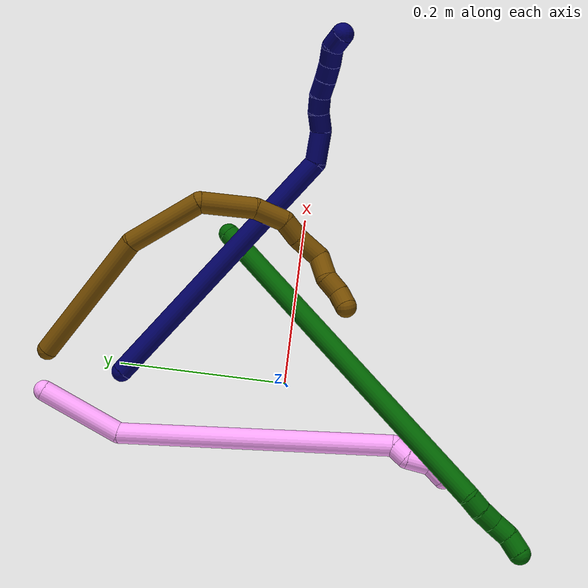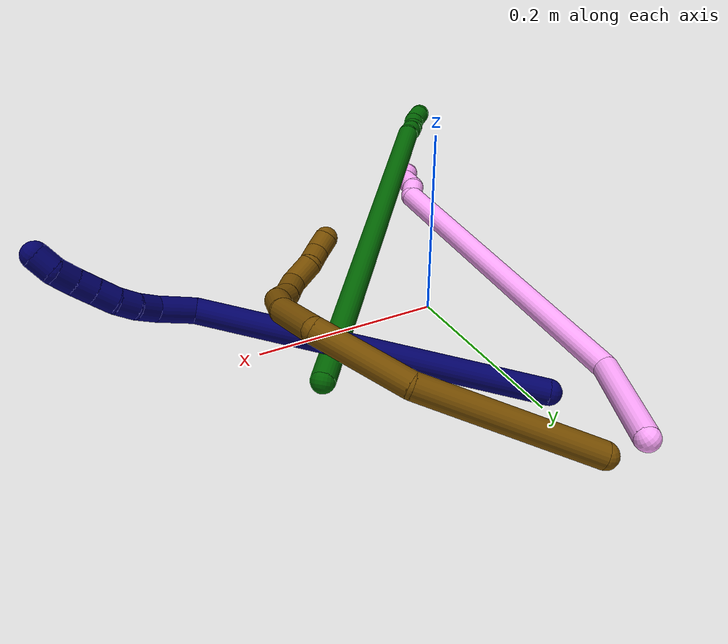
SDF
<sdf version="1.7">
 <world name="default">
  <model name="photoneo_s_sensor">
   <static>1</static>
   <pose>0 0 2 1.57079 1.57079 3.14159</pose>
   <link name="link">
    <inertial><mass>0.1</mass></inertial>
    <sensor name="sensor" type="depth">
     <update_rate>30</update_rate>
     <camera>
      <horizontal_fov>1.22</horizontal_fov>
      <image><width>1920</width><height>1200</height><format>B8G8R8</format></image>
      <clip><near>0.1</near><far>4</far></clip>
      <depth_camera><output>points</output></depth_camera>
     </camera>
     <plugin name="camera_plugin" filename="libgazebo_ros_depth_camera.so">
      <baseline>0.2</baseline>
      <alwaysOn>1</alwaysOn>
      <updateRate>0.0</updateRate>
      <cameraName>camera_ir</cameraName>
      <imageTopicName>/camera/color/image_raw</imageTopicName>
      <cameraInfoTopicName>/camera/color/camera_info</cameraInfoTopicName>
      <depthImageTopicName>/camera/depth/image_raw</depthImageTopicName>
      <depthImageCameraInfoTopicName>/camera/depth/camera_info</depthImageCameraInfoTopicName>
      <pointCloudTopicName>/camera/depth/points</pointCloudTopicName>
      <frameName>fr_optical</frameName>
      <pointCloudCutoff>0.1</pointCloudCutoff>
      <pointCloudCutoffMax>2.0</pointCloudCutoffMax>
      <distortionK1>0</distortionK1>
      <distortionK2>0</distortionK2>
      <distortionK3>0</distortionK3>
      <distortionT1>0</distortionT1>
      <distortionT2>0</distortionT2>
      <CxPrime>0</CxPrime>
      <Cx>0</Cx>
      <Cy>0</Cy>
      <focalLength>0</focalLength>
      <hackBaseline>0</hackBaseline>
     </plugin>
    </sensor>
   </link>
  </model>
  <model name="bin">
   <static>1</static>
   <link name="bottom">
    <collision name="collision-bottom">
     <pose>0 0 -0.01 0 -0 0</pose>
     <geometry><box><size>0.8 0.6 0.02</size></box></geometry>
     <surface>
      <friction><ode><mu>100</mu><mu2>100</mu2></ode></friction>
      <contact><collide_bitmask>65535</collide_bitmask></contact>
     </surface>
    </collision>
   </link>
   <link name="west_wall">
    <collision name="collision-west_wall">
     <pose>-0.41 0 0.1 0 -0 0</pose>
     <geometry><box><size>0.02 0.6 0.2</size></box></geometry>
     <surface>
      <friction><ode><mu>100</mu><mu2>100</mu2></ode></friction>
      <contact><collide_bitmask>65535</collide_bitmask></contact>
     </surface>
    </collision>
   </link>
   <link name="east_wall">
    <collision name="collision-east_wall">
     <pose>0.41 0 0.1 0 -0 0</pose>
     <geometry><box><size>0.02 0.6 0.2</size></box></geometry>
     <surface>
      <friction><ode><mu>100</mu><mu2>100</mu2></ode></friction>
      <contact><collide_bitmask>65535</collide_bitmask></contact>
     </surface>
    </collision>
   </link>
   <link name="south_wall">
    <collision name="collision-south_wall">
     <pose>0 -0.31 0.1 0 -0 0</pose>
     <geometry><box><size>0.8 0.02 0.2</size></box></geometry>
     <surface>
      <friction><ode><mu>100</mu><mu2>100</mu2></ode></friction>
      <contact><collide_bitmask>65535</collide_bitmask></contact>
     </surface>
    </collision>
   </link>
   <link name="north_wall">
    <collision name="collision-north_wall">
     <pose>0 0.31 0.1 0 -0 0</pose>
     <geometry><box><size>0.8 0.02 0.2</size></box></geometry>
     <surface>
      <friction><ode><mu>100</mu><mu2>100</mu2></ode></friction>
      <contact><collide_bitmask>65535</collide_bitmask></contact>
     </surface>
    </collision>
   </link>
  </model>
  <model name="4">
   <static>0</static>
   <link name="4">
    <collision name="collision-cylinder-e_1_1_4">
     <pose>0.033227 -0.037337 -0.012721 1.89916 0.700036 0.943273</pose>
     <geometry><cylinder><radius>0.0125</radius><length>0.103149</length></cylinder></geometry>
     <surface>
      <friction><ode><mu>1.16</mu><mu2>1.16</mu2><slip1>0</slip1><slip2>0</slip2></ode></friction>
      <contact><ode><kp>1e+06</kp><kd>1</kd><max_vel>0</max_vel><min_depth>0.001</min_depth></ode></contact>
     </surface>
    </collision>
    <visual name="visual-cylinder-e_1_1_4">
     <pose>0.033227 -0.037337 -0.012721 1.89916 0.700036 0.943273</pose>
     <geometry><cylinder><radius>0.0125</radius><length>0.103149</length></cylinder></geometry>
     <material><ambient>1 0.65098 0.996078 1</ambient></material>
    </visual>
    <collision name="collision-cylinder-e_2_4_5">
     <pose>0.117401 -0.192231 -0.127233 2.28445 0.316616 0.672302</pose>
     <geometry><cylinder><radius>0.0125</radius><length>0.327271</length></cylinder></geometry>
     <surface>
      <friction><ode><mu>1.16</mu><mu2>1.16</mu2><slip1>0</slip1><slip2>0</slip2></ode></friction>
      <contact><ode><kp>1e+06</kp><kd>1</kd><max_vel>0</max_vel><min_depth>0.001</min_depth></ode></contact>
     </surface>
    </collision>
    <visual name="visual-cylinder-e_2_4_5">
     <pose>0.117401 -0.192231 -0.127233 2.28445 0.316616 0.672302</pose>
     <geometry><cylinder><radius>0.0125</radius><length>0.327271</length></cylinder></geometry>
     <material><ambient>1 0.65098 0.996078 1</ambient></material>
    </visual>
    <collision name="collision-cylinder-e_3_5_6">
     <pose>0.176737 -0.314758 -0.231366 2.01078 0.990752 1.41078</pose>
     <geometry><cylinder><radius>0.0125</radius><length>0.020054</length></cylinder></geometry>
     <surface>
      <friction><ode><mu>1.16</mu><mu2>1.16</mu2><slip1>0</slip1><slip2>0</slip2></ode></friction>
      <contact><ode><kp>1e+06</kp><kd>1</kd><max_vel>0</max_vel><min_depth>0.001</min_depth></ode></contact>
     </surface>
    </collision>
    <visual name="visual-cylinder-e_3_5_6">
     <pose>0.176737 -0.314758 -0.231366 2.01078 0.990752 1.41078</pose>
     <geometry><cylinder><radius>0.0125</radius><length>0.020054</length></cylinder></geometry>
     <material><ambient>1 0.65098 0.996078 1</ambient></material>
    </visual>
    <collision name="collision-cylinder-e_4_6_7">
     <pose>0.191396 -0.331211 -0.238763 1.98572 0.463642 0.69454</pose>
     <geometry><cylinder><radius>0.0125</radius><length>0.028053</length></cylinder></geometry>
     <surface>
      <friction><ode><mu>1.16</mu><mu2>1.16</mu2><slip1>0</slip1><slip2>0</slip2></ode></friction>
      <contact><ode><kp>1e+06</kp><kd>1</kd><max_vel>0</max_vel><min_depth>0.001</min_depth></ode></contact>
     </surface>
    </collision>
    <visual name="visual-cylinder-e_4_6_7">
     <pose>0.191396 -0.331211 -0.238763 1.98572 0.463642 0.69454</pose>
     <geometry><cylinder><radius>0.0125</radius><length>0.028053</length></cylinder></geometry>
     <material><ambient>1 0.65098 0.996078 1</ambient></material>
    </visual>
    <collision name="collision-cylinder-e_5_7_2">
     <pose>0.206412 -0.34891 -0.244256 1.64063 0.951467 1.00951</pose>
     <geometry><cylinder><radius>0.0125</radius><length>0.021474</length></cylinder></geometry>
     <surface>
      <friction><ode><mu>1.16</mu><mu2>1.16</mu2><slip1>0</slip1><slip2>0</slip2></ode></friction>
      <contact><ode><kp>1e+06</kp><kd>1</kd><max_vel>0</max_vel><min_depth>0.001</min_depth></ode></contact>
     </surface>
    </collision>
    <visual name="visual-cylinder-e_5_7_2">
     <pose>0.206412 -0.34891 -0.244256 1.64063 0.951467 1.00951</pose>
     <geometry><cylinder><radius>0.0125</radius><length>0.021474</length></cylinder></geometry>
     <material><ambient>1 0.65098 0.996078 1</ambient></material>
    </visual>
    <collision name="collision-sphere-2">
     <pose>0.215154 -0.355127 -0.24469 0 -0 0</pose>
     <geometry><sphere><radius>0.0125</radius></sphere></geometry>
     <surface>
      <friction><ode><mu>1.16</mu><mu2>1.16</mu2><slip1>0</slip1><slip2>0</slip2></ode></friction>
      <contact><ode><kp>1e+06</kp><kd>1</kd><max_vel>0</max_vel><min_depth>0.001</min_depth></ode></contact>
     </surface>
    </collision>
    <visual name="visual-sphere-2">
     <pose>0.215154 -0.355127 -0.24469 0 -0 0</pose>
     <geometry><sphere><radius>0.0125</radius></sphere></geometry>
     <material><ambient>1 0.65098 0.996078 1</ambient></material>
    </visual>
    <collision name="collision-sphere-7">
     <pose>0.197669 -0.342693 -0.243821 0 -0 0</pose>
     <geometry><sphere><radius>0.0125</radius></sphere></geometry>
     <surface>
      <friction><ode><mu>1.16</mu><mu2>1.16</mu2><slip1>0</slip1><slip2>0</slip2></ode></friction>
      <contact><ode><kp>1e+06</kp><kd>1</kd><max_vel>0</max_vel><min_depth>0.001</min_depth></ode></contact>
     </surface>
    </collision>
    <visual name="visual-sphere-7">
     <pose>0.197669 -0.342693 -0.243821 0 -0 0</pose>
     <geometry><sphere><radius>0.0125</radius></sphere></geometry>
     <material><ambient>1 0.65098 0.996078 1</ambient></material>
    </visual>
    <collision name="collision-sphere-6">
     <pose>0.185124 -0.31973 -0.233706 0 -0 0</pose>
     <geometry><sphere><radius>0.0125</radius></sphere></geometry>
     <surface>
      <friction><ode><mu>1.16</mu><mu2>1.16</mu2><slip1>0</slip1><slip2>0</slip2></ode></friction>
      <contact><ode><kp>1e+06</kp><kd>1</kd><max_vel>0</max_vel><min_depth>0.001</min_depth></ode></contact>
     </surface>
    </collision>
    <visual name="visual-sphere-6">
     <pose>0.185124 -0.31973 -0.233706 0 -0 0</pose>
     <geometry><sphere><radius>0.0125</radius></sphere></geometry>
     <material><ambient>1 0.65098 0.996078 1</ambient></material>
    </visual>
    <collision name="collision-sphere-5">
     <pose>0.16835 -0.309786 -0.229025 0 -0 0</pose>
     <geometry><sphere><radius>0.0125</radius></sphere></geometry>
     <surface>
      <friction><ode><mu>1.16</mu><mu2>1.16</mu2><slip1>0</slip1><slip2>0</slip2></ode></friction>
      <contact><ode><kp>1e+06</kp><kd>1</kd><max_vel>0</max_vel><min_depth>0.001</min_depth></ode></contact>
     </surface>
    </collision>
    <visual name="visual-sphere-5">
     <pose>0.16835 -0.309786 -0.229025 0 -0 0</pose>
     <geometry><sphere><radius>0.0125</radius></sphere></geometry>
     <material><ambient>1 0.65098 0.996078 1</ambient></material>
    </visual>
    <collision name="collision-sphere-1">
     <geometry><sphere><radius>0.0125</radius></sphere></geometry>
     <surface>
      <friction><ode><mu>1.16</mu><mu2>1.16</mu2><slip1>0</slip1><slip2>0</slip2></ode></friction>
      <contact><ode><kp>1e+06</kp><kd>1</kd><max_vel>0</max_vel><min_depth>0.001</min_depth></ode></contact>
     </surface>
    </collision>
    <visual name="visual-sphere-1">
     <geometry><sphere><radius>0.0125</radius></sphere></geometry>
     <material><ambient>1 0.65098 0.996078 1</ambient></material>
    </visual>
    <collision name="collision-sphere-4">
     <pose>0.066453 -0.074675 -0.025442 0 -0 0</pose>
     <geometry><sphere><radius>0.0125</radius></sphere></geometry>
     <surface>
      <friction><ode><mu>1.16</mu><mu2>1.16</mu2><slip1>0</slip1><slip2>0</slip2></ode></friction>
      <contact><ode><kp>1e+06</kp><kd>1</kd><max_vel>0</max_vel><min_depth>0.001</min_depth></ode></contact>
     </surface>
    </collision>
    <visual name="visual-sphere-4">
     <pose>0.066453 -0.074675 -0.025442 0 -0 0</pose>
     <geometry><sphere><radius>0.0125</radius></sphere></geometry>
     <material><ambient>1 0.65098 0.996078 1</ambient></material>
    </visual>
    <inertial>
     <pose>0.11039 -0.179717 -0.119069 0 -0 0</pose>
     <mass>0.5</mass>
     <inertia>
      <ixx>0.004042</ixx>
      <ixy>0</ixy>
      <ixz>0</ixz>
      <iyy>0.000729</iyy>
      <iyz>0</iyz>
      <izz>0.001183</izz>
     </inertia>
    </inertial>
   </link>
   <pose>-0.04351 0.285562 0.012338 2.51168 -0.341328 -2.77641</pose>
  </model>
  <model name="6">
   <static>0</static>
   <link name="6">
    <collision name="collision-cylinder-e_1_1_4">
     <pose>-0.063832 -0.113019 0.162581 0.607469 -0.311859 -0.098467</pose>
     <geometry><cylinder><radius>0.0125</radius><length>0.41608</length></cylinder></geometry>
     <surface>
      <friction><ode><mu>1.16</mu><mu2>1.16</mu2><slip1>0</slip1><slip2>0</slip2></ode></friction>
      <contact><ode><kp>1e+06</kp><kd>1</kd><max_vel>0</max_vel><min_depth>0.001</min_depth></ode></contact>
     </surface>
    </collision>
    <visual name="visual-cylinder-e_1_1_4">
     <pose>-0.063832 -0.113019 0.162581 0.607469 -0.311859 -0.098467</pose>
     <geometry><cylinder><radius>0.0125</radius><length>0.41608</length></cylinder></geometry>
     <material><ambient>0 0.392157 0.003922 1</ambient></material>
    </visual>
    <collision name="collision-cylinder-e_2_4_5">
     <pose>-0.132184 -0.233147 0.330617 0.916226 -0.467133 -0.233558</pose>
     <geometry><cylinder><radius>0.0125</radius><length>0.020069</length></cylinder></geometry>
     <surface>
      <friction><ode><mu>1.16</mu><mu2>1.16</mu2><slip1>0</slip1><slip2>0</slip2></ode></friction>
      <contact><ode><kp>1e+06</kp><kd>1</kd><max_vel>0</max_vel><min_depth>0.001</min_depth></ode></contact>
     </surface>
    </collision>
    <visual name="visual-cylinder-e_2_4_5">
     <pose>-0.132184 -0.233147 0.330617 0.916226 -0.467133 -0.233558</pose>
     <geometry><cylinder><radius>0.0125</radius><length>0.020069</length></cylinder></geometry>
     <material><ambient>0 0.392157 0.003922 1</ambient></material>
    </visual>
    <collision name="collision-cylinder-e_3_5_6">
     <pose>-0.140657 -0.248673 0.340849 1.05467 -0.387835 -0.227737</pose>
     <geometry><cylinder><radius>0.0125</radius><length>0.020913</length></cylinder></geometry>
     <surface>
      <friction><ode><mu>1.16</mu><mu2>1.16</mu2><slip1>0</slip1><slip2>0</slip2></ode></friction>
      <contact><ode><kp>1e+06</kp><kd>1</kd><max_vel>0</max_vel><min_depth>0.001</min_depth></ode></contact>
     </surface>
    </collision>
    <visual name="visual-cylinder-e_3_5_6">
     <pose>-0.140657 -0.248673 0.340849 1.05467 -0.387835 -0.227737</pose>
     <geometry><cylinder><radius>0.0125</radius><length>0.020913</length></cylinder></geometry>
     <material><ambient>0 0.392157 0.003922 1</ambient></material>
    </visual>
    <collision name="collision-cylinder-e_4_6_7">
     <pose>-0.147602 -0.26473 0.35239 0.845941 -0.285113 -0.129038</pose>
     <geometry><cylinder><radius>0.0125</radius><length>0.021263</length></cylinder></geometry>
     <surface>
      <friction><ode><mu>1.16</mu><mu2>1.16</mu2><slip1>0</slip1><slip2>0</slip2></ode></friction>
      <contact><ode><kp>1e+06</kp><kd>1</kd><max_vel>0</max_vel><min_depth>0.001</min_depth></ode></contact>
     </surface>
    </collision>
    <visual name="visual-cylinder-e_4_6_7">
     <pose>-0.147602 -0.26473 0.35239 0.845941 -0.285113 -0.129038</pose>
     <geometry><cylinder><radius>0.0125</radius><length>0.021263</length></cylinder></geometry>
     <material><ambient>0 0.392157 0.003922 1</ambient></material>
    </visual>
    <collision name="collision-cylinder-e_5_7_2">
     <pose>-0.155716 -0.277606 0.367139 0.580629 -0.492443 -0.149886</pose>
     <geometry><cylinder><radius>0.0125</radius><length>0.021675</length></cylinder></geometry>
     <surface>
      <friction><ode><mu>1.16</mu><mu2>1.16</mu2><slip1>0</slip1><slip2>0</slip2></ode></friction>
      <contact><ode><kp>1e+06</kp><kd>1</kd><max_vel>0</max_vel><min_depth>0.001</min_depth></ode></contact>
     </surface>
    </collision>
    <visual name="visual-cylinder-e_5_7_2">
     <pose>-0.155716 -0.277606 0.367139 0.580629 -0.492443 -0.149886</pose>
     <geometry><cylinder><radius>0.0125</radius><length>0.021675</length></cylinder></geometry>
     <material><ambient>0 0.392157 0.003922 1</ambient></material>
    </visual>
    <collision name="collision-sphere-2">
     <pose>-0.16084 -0.282844 0.375124 0 -0 0</pose>
     <geometry><sphere><radius>0.0125</radius></sphere></geometry>
     <surface>
      <friction><ode><mu>1.16</mu><mu2>1.16</mu2><slip1>0</slip1><slip2>0</slip2></ode></friction>
      <contact><ode><kp>1e+06</kp><kd>1</kd><max_vel>0</max_vel><min_depth>0.001</min_depth></ode></contact>
     </surface>
    </collision>
    <visual name="visual-sphere-2">
     <pose>-0.16084 -0.282844 0.375124 0 -0 0</pose>
     <geometry><sphere><radius>0.0125</radius></sphere></geometry>
     <material><ambient>0 0.392157 0.003922 1</ambient></material>
    </visual>
    <collision name="collision-sphere-7">
     <pose>-0.150592 -0.272367 0.359155 0 -0 0</pose>
     <geometry><sphere><radius>0.0125</radius></sphere></geometry>
     <surface>
      <friction><ode><mu>1.16</mu><mu2>1.16</mu2><slip1>0</slip1><slip2>0</slip2></ode></friction>
      <contact><ode><kp>1e+06</kp><kd>1</kd><max_vel>0</max_vel><min_depth>0.001</min_depth></ode></contact>
     </surface>
    </collision>
    <visual name="visual-sphere-7">
     <pose>-0.150592 -0.272367 0.359155 0 -0 0</pose>
     <geometry><sphere><radius>0.0125</radius></sphere></geometry>
     <material><ambient>0 0.392157 0.003922 1</ambient></material>
    </visual>
    <collision name="collision-sphere-6">
     <pose>-0.144612 -0.257092 0.345626 0 -0 0</pose>
     <geometry><sphere><radius>0.0125</radius></sphere></geometry>
     <surface>
      <friction><ode><mu>1.16</mu><mu2>1.16</mu2><slip1>0</slip1><slip2>0</slip2></ode></friction>
      <contact><ode><kp>1e+06</kp><kd>1</kd><max_vel>0</max_vel><min_depth>0.001</min_depth></ode></contact>
     </surface>
    </collision>
    <visual name="visual-sphere-6">
     <pose>-0.144612 -0.257092 0.345626 0 -0 0</pose>
     <geometry><sphere><radius>0.0125</radius></sphere></geometry>
     <material><ambient>0 0.392157 0.003922 1</ambient></material>
    </visual>
    <collision name="collision-sphere-5">
     <pose>-0.136703 -0.240254 0.336071 0 -0 0</pose>
     <geometry><sphere><radius>0.0125</radius></sphere></geometry>
     <surface>
      <friction><ode><mu>1.16</mu><mu2>1.16</mu2><slip1>0</slip1><slip2>0</slip2></ode></friction>
      <contact><ode><kp>1e+06</kp><kd>1</kd><max_vel>0</max_vel><min_depth>0.001</min_depth></ode></contact>
     </surface>
    </collision>
    <visual name="visual-sphere-5">
     <pose>-0.136703 -0.240254 0.336071 0 -0 0</pose>
     <geometry><sphere><radius>0.0125</radius></sphere></geometry>
     <material><ambient>0 0.392157 0.003922 1</ambient></material>
    </visual>
    <collision name="collision-sphere-1">
     <geometry><sphere><radius>0.0125</radius></sphere></geometry>
     <surface>
      <friction><ode><mu>1.16</mu><mu2>1.16</mu2><slip1>0</slip1><slip2>0</slip2></ode></friction>
      <contact><ode><kp>1e+06</kp><kd>1</kd><max_vel>0</max_vel><min_depth>0.001</min_depth></ode></contact>
     </surface>
    </collision>
    <visual name="visual-sphere-1">
     <geometry><sphere><radius>0.0125</radius></sphere></geometry>
     <material><ambient>0 0.392157 0.003922 1</ambient></material>
    </visual>
    <collision name="collision-sphere-4">
     <pose>-0.127665 -0.226039 0.325162 0 -0 0</pose>
     <geometry><sphere><radius>0.0125</radius></sphere></geometry>
     <surface>
      <friction><ode><mu>1.16</mu><mu2>1.16</mu2><slip1>0</slip1><slip2>0</slip2></ode></friction>
      <contact><ode><kp>1e+06</kp><kd>1</kd><max_vel>0</max_vel><min_depth>0.001</min_depth></ode></contact>
     </surface>
    </collision>
    <visual name="visual-sphere-4">
     <pose>-0.127665 -0.226039 0.325162 0 -0 0</pose>
     <geometry><sphere><radius>0.0125</radius></sphere></geometry>
     <material><ambient>0 0.392157 0.003922 1</ambient></material>
    </visual>
    <inertial>
     <pose>-0.077335 -0.137101 0.193721 0 -0 0</pose>
     <mass>0.5</mass>
     <inertia><ixx>0.00513</ixx><ixy>0</ixy><ixz>0</ixz><iyy>0.00444</iyy><iyz>0</iyz><izz>0.005153</izz></inertia>
    </inertial>
   </link>
   <pose>0.170833 0.089451 0.016864 0.569834 -0.342302 -0.2827</pose>
  </model>
  <model name="7">
   <static>0</static>
   <link name="7">
    <collision name="collision-cylinder-e_1_1_4">
     <pose>0.124875 -0.106838 0.041373 1.20133 0.828411 0.58512</pose>
     <geometry><cylinder><radius>0.0125</radius><length>0.338939</length></cylinder></geometry>
     <surface>
      <friction><ode><mu>1.16</mu><mu2>1.16</mu2><slip1>0</slip1><slip2>0</slip2></ode></friction>
      <contact><ode><kp>1e+06</kp><kd>1</kd><max_vel>0</max_vel><min_depth>0.001</min_depth></ode></contact>
     </surface>
    </collision>
    <visual name="visual-cylinder-e_1_1_4">
     <pose>0.124875 -0.106838 0.041373 1.20133 0.828411 0.58512</pose>
     <geometry><cylinder><radius>0.0125</radius><length>0.338939</length></cylinder></geometry>
     <material><ambient>0.003922 0 0.403922 1</ambient></material>
    </visual>
    <collision name="collision-cylinder-e_2_4_5">
     <pose>0.255892 -0.231466 0.082305 1.59559 0.332366 0.340552</pose>
     <geometry><cylinder><radius>0.0125</radius><length>0.037651</length></cylinder></geometry>
     <surface>
      <friction><ode><mu>1.16</mu><mu2>1.16</mu2><slip1>0</slip1><slip2>0</slip2></ode></friction>
      <contact><ode><kp>1e+06</kp><kd>1</kd><max_vel>0</max_vel><min_depth>0.001</min_depth></ode></contact>
     </surface>
    </collision>
    <visual name="visual-cylinder-e_2_4_5">
     <pose>0.255892 -0.231466 0.082305 1.59559 0.332366 0.340552</pose>
     <geometry><cylinder><radius>0.0125</radius><length>0.037651</length></cylinder></geometry>
     <material><ambient>0.003922 0 0.403922 1</ambient></material>
    </visual>
    <collision name="collision-cylinder-e_3_5_6">
     <pose>0.263358 -0.259739 0.078158 1.9106 0.118469 0.167339</pose>
     <geometry><cylinder><radius>0.0125</radius><length>0.022395</length></cylinder></geometry>
     <surface>
      <friction><ode><mu>1.16</mu><mu2>1.16</mu2><slip1>0</slip1><slip2>0</slip2></ode></friction>
      <contact><ode><kp>1e+06</kp><kd>1</kd><max_vel>0</max_vel><min_depth>0.001</min_depth></ode></contact>
     </surface>
    </collision>
    <visual name="visual-cylinder-e_3_5_6">
     <pose>0.263358 -0.259739 0.078158 1.9106 0.118469 0.167339</pose>
     <geometry><cylinder><radius>0.0125</radius><length>0.022395</length></cylinder></geometry>
     <material><ambient>0.003922 0 0.403922 1</ambient></material>
    </visual>
    <collision name="collision-cylinder-e_4_6_7">
     <pose>0.268022 -0.279261 0.071323 1.90416 0.336019 0.467728</pose>
     <geometry><cylinder><radius>0.0125</radius><length>0.020262</length></cylinder></geometry>
     <surface>
      <friction><ode><mu>1.16</mu><mu2>1.16</mu2><slip1>0</slip1><slip2>0</slip2></ode></friction>
      <contact><ode><kp>1e+06</kp><kd>1</kd><max_vel>0</max_vel><min_depth>0.001</min_depth></ode></contact>
     </surface>
    </collision>
    <visual name="visual-cylinder-e_4_6_7">
     <pose>0.268022 -0.279261 0.071323 1.90416 0.336019 0.467728</pose>
     <geometry><cylinder><radius>0.0125</radius><length>0.020262</length></cylinder></geometry>
     <material><ambient>0.003922 0 0.403922 1</ambient></material>
    </visual>
    <collision name="collision-cylinder-e_5_7_8">
     <pose>0.276884 -0.296394 0.065092 1.93662 0.567103 0.801502</pose>
     <geometry><cylinder><radius>0.0125</radius><length>0.020557</length></cylinder></geometry>
     <surface>
      <friction><ode><mu>1.16</mu><mu2>1.16</mu2><slip1>0</slip1><slip2>0</slip2></ode></friction>
      <contact><ode><kp>1e+06</kp><kd>1</kd><max_vel>0</max_vel><min_depth>0.001</min_depth></ode></contact>
     </surface>
    </collision>
    <visual name="visual-cylinder-e_5_7_8">
     <pose>0.276884 -0.296394 0.065092 1.93662 0.567103 0.801502</pose>
     <geometry><cylinder><radius>0.0125</radius><length>0.020557</length></cylinder></geometry>
     <material><ambient>0.003922 0 0.403922 1</ambient></material>
    </visual>
    <collision name="collision-cylinder-e_6_8_9">
     <pose>0.287412 -0.312466 0.058577 1.97521 0.523405 0.771312</pose>
     <geometry><cylinder><radius>0.0125</radius><length>0.020032</length></cylinder></geometry>
     <surface>
      <friction><ode><mu>1.16</mu><mu2>1.16</mu2><slip1>0</slip1><slip2>0</slip2></ode></friction>
      <contact><ode><kp>1e+06</kp><kd>1</kd><max_vel>0</max_vel><min_depth>0.001</min_depth></ode></contact>
     </surface>
    </collision>
    <visual name="visual-cylinder-e_6_8_9">
     <pose>0.287412 -0.312466 0.058577 1.97521 0.523405 0.771312</pose>
     <geometry><cylinder><radius>0.0125</radius><length>0.020032</length></cylinder></geometry>
     <material><ambient>0.003922 0 0.403922 1</ambient></material>
    </visual>
    <collision name="collision-cylinder-e_7_9_10">
     <pose>0.296656 -0.32839 0.050648 2.08738 0.434047 0.724255</pose>
     <geometry><cylinder><radius>0.0125</radius><length>0.020152</length></cylinder></geometry>
     <surface>
      <friction><ode><mu>1.16</mu><mu2>1.16</mu2><slip1>0</slip1><slip2>0</slip2></ode></friction>
      <contact><ode><kp>1e+06</kp><kd>1</kd><max_vel>0</max_vel><min_depth>0.001</min_depth></ode></contact>
     </surface>
    </collision>
    <visual name="visual-cylinder-e_7_9_10">
     <pose>0.296656 -0.32839 0.050648 2.08738 0.434047 0.724255</pose>
     <geometry><cylinder><radius>0.0125</radius><length>0.020152</length></cylinder></geometry>
     <material><ambient>0.003922 0 0.403922 1</ambient></material>
    </visual>
    <collision name="collision-cylinder-e_8_10_2">
     <pose>0.308619 -0.341793 0.042866 2.11037 0.882181 1.38911</pose>
     <geometry><cylinder><radius>0.0125</radius><length>0.020012</length></cylinder></geometry>
     <surface>
      <friction><ode><mu>1.16</mu><mu2>1.16</mu2><slip1>0</slip1><slip2>0</slip2></ode></friction>
      <contact><ode><kp>1e+06</kp><kd>1</kd><max_vel>0</max_vel><min_depth>0.001</min_depth></ode></contact>
     </surface>
    </collision>
    <visual name="visual-cylinder-e_8_10_2">
     <pose>0.308619 -0.341793 0.042866 2.11037 0.882181 1.38911</pose>
     <geometry><cylinder><radius>0.0125</radius><length>0.020012</length></cylinder></geometry>
     <material><ambient>0.003922 0 0.403922 1</ambient></material>
    </visual>
    <collision name="collision-sphere-2">
     <pose>0.316345 -0.347249 0.0396 0 -0 0</pose>
     <geometry><sphere><radius>0.0125</radius></sphere></geometry>
     <surface>
      <friction><ode><mu>1.16</mu><mu2>1.16</mu2><slip1>0</slip1><slip2>0</slip2></ode></friction>
      <contact><ode><kp>1e+06</kp><kd>1</kd><max_vel>0</max_vel><min_depth>0.001</min_depth></ode></contact>
     </surface>
    </collision>
    <visual name="visual-sphere-2">
     <pose>0.316345 -0.347249 0.0396 0 -0 0</pose>
     <geometry><sphere><radius>0.0125</radius></sphere></geometry>
     <material><ambient>0.003922 0 0.403922 1</ambient></material>
    </visual>
    <collision name="collision-sphere-10">
     <pose>0.300893 -0.336338 0.046133 0 -0 0</pose>
     <geometry><sphere><radius>0.0125</radius></sphere></geometry>
     <surface>
      <friction><ode><mu>1.16</mu><mu2>1.16</mu2><slip1>0</slip1><slip2>0</slip2></ode></friction>
      <contact><ode><kp>1e+06</kp><kd>1</kd><max_vel>0</max_vel><min_depth>0.001</min_depth></ode></contact>
     </surface>
    </collision>
    <visual name="visual-sphere-10">
     <pose>0.300893 -0.336338 0.046133 0 -0 0</pose>
     <geometry><sphere><radius>0.0125</radius></sphere></geometry>
     <material><ambient>0.003922 0 0.403922 1</ambient></material>
    </visual>
    <collision name="collision-sphere-9">
     <pose>0.292418 -0.320441 0.055163 0 -0 0</pose>
     <geometry><sphere><radius>0.0125</radius></sphere></geometry>
     <surface>
      <friction><ode><mu>1.16</mu><mu2>1.16</mu2><slip1>0</slip1><slip2>0</slip2></ode></friction>
      <contact><ode><kp>1e+06</kp><kd>1</kd><max_vel>0</max_vel><min_depth>0.001</min_depth></ode></contact>
     </surface>
    </collision>
    <visual name="visual-sphere-9">
     <pose>0.292418 -0.320441 0.055163 0 -0 0</pose>
     <geometry><sphere><radius>0.0125</radius></sphere></geometry>
     <material><ambient>0.003922 0 0.403922 1</ambient></material>
    </visual>
    <collision name="collision-sphere-4">
     <pose>0.24975 -0.213676 0.082747 0 -0 0</pose>
     <geometry><sphere><radius>0.0125</radius></sphere></geometry>
     <surface>
      <friction><ode><mu>1.16</mu><mu2>1.16</mu2><slip1>0</slip1><slip2>0</slip2></ode></friction>
      <contact><ode><kp>1e+06</kp><kd>1</kd><max_vel>0</max_vel><min_depth>0.001</min_depth></ode></contact>
     </surface>
    </collision>
    <visual name="visual-sphere-4">
     <pose>0.24975 -0.213676 0.082747 0 -0 0</pose>
     <geometry><sphere><radius>0.0125</radius></sphere></geometry>
     <material><ambient>0.003922 0 0.403922 1</ambient></material>
    </visual>
    <collision name="collision-sphere-1">
     <geometry><sphere><radius>0.0125</radius></sphere></geometry>
     <surface>
      <friction><ode><mu>1.16</mu><mu2>1.16</mu2><slip1>0</slip1><slip2>0</slip2></ode></friction>
      <contact><ode><kp>1e+06</kp><kd>1</kd><max_vel>0</max_vel><min_depth>0.001</min_depth></ode></contact>
     </surface>
    </collision>
    <visual name="visual-sphere-1">
     <geometry><sphere><radius>0.0125</radius></sphere></geometry>
     <material><ambient>0.003922 0 0.403922 1</ambient></material>
    </visual>
    <collision name="collision-sphere-8">
     <pose>0.282406 -0.30449 0.06199 0 -0 0</pose>
     <geometry><sphere><radius>0.0125</radius></sphere></geometry>
     <surface>
      <friction><ode><mu>1.16</mu><mu2>1.16</mu2><slip1>0</slip1><slip2>0</slip2></ode></friction>
      <contact><ode><kp>1e+06</kp><kd>1</kd><max_vel>0</max_vel><min_depth>0.001</min_depth></ode></contact>
     </surface>
    </collision>
    <visual name="visual-sphere-8">
     <pose>0.282406 -0.30449 0.06199 0 -0 0</pose>
     <geometry><sphere><radius>0.0125</radius></sphere></geometry>
     <material><ambient>0.003922 0 0.403922 1</ambient></material>
    </visual>
    <collision name="collision-sphere-5">
     <pose>0.262034 -0.249256 0.081864 0 -0 0</pose>
     <geometry><sphere><radius>0.0125</radius></sphere></geometry>
     <surface>
      <friction><ode><mu>1.16</mu><mu2>1.16</mu2><slip1>0</slip1><slip2>0</slip2></ode></friction>
      <contact><ode><kp>1e+06</kp><kd>1</kd><max_vel>0</max_vel><min_depth>0.001</min_depth></ode></contact>
     </surface>
    </collision>
    <visual name="visual-sphere-5">
     <pose>0.262034 -0.249256 0.081864 0 -0 0</pose>
     <geometry><sphere><radius>0.0125</radius></sphere></geometry>
     <material><ambient>0.003922 0 0.403922 1</ambient></material>
    </visual>
    <collision name="collision-sphere-6">
     <pose>0.264681 -0.270223 0.074452 0 -0 0</pose>
     <geometry><sphere><radius>0.0125</radius></sphere></geometry>
     <surface>
      <friction><ode><mu>1.16</mu><mu2>1.16</mu2><slip1>0</slip1><slip2>0</slip2></ode></friction>
      <contact><ode><kp>1e+06</kp><kd>1</kd><max_vel>0</max_vel><min_depth>0.001</min_depth></ode></contact>
     </surface>
    </collision>
    <visual name="visual-sphere-6">
     <pose>0.264681 -0.270223 0.074452 0 -0 0</pose>
     <geometry><sphere><radius>0.0125</radius></sphere></geometry>
     <material><ambient>0.003922 0 0.403922 1</ambient></material>
    </visual>
    <collision name="collision-sphere-7">
     <pose>0.271362 -0.288299 0.068193 0 -0 0</pose>
     <geometry><sphere><radius>0.0125</radius></sphere></geometry>
     <surface>
      <friction><ode><mu>1.16</mu><mu2>1.16</mu2><slip1>0</slip1><slip2>0</slip2></ode></friction>
      <contact><ode><kp>1e+06</kp><kd>1</kd><max_vel>0</max_vel><min_depth>0.001</min_depth></ode></contact>
     </surface>
    </collision>
    <visual name="visual-sphere-7">
     <pose>0.271362 -0.288299 0.068193 0 -0 0</pose>
     <geometry><sphere><radius>0.0125</radius></sphere></geometry>
     <material><ambient>0.003922 0 0.403922 1</ambient></material>
    </visual>
    <inertial>
     <pose>0.173783 -0.164424 0.049415 0 -0 0</pose>
     <mass>0.5</mass>
     <inertia>
      <ixx>0.003095</ixx>
      <ixy>0</ixy>
      <ixz>0</ixz>
      <iyy>0.003414</iyy>
      <iyz>0</iyz>
      <izz>-0.000337</izz>
     </inertia>
    </inertial>
   </link>
   <pose>-0.009116 0.196116 0.012506 -2.9678 -0.400024 -1.37344</pose>
  </model>
  <model name="12">
   <static>0</static>
   <link name="12">
    <collision name="collision-cylinder-e_1_1_4">
     <pose>0.005571 -0.063061 0.058308 0.824545 0.064772 0.028335</pose>
     <geometry><cylinder><radius>0.0125</radius><length>0.172134</length></cylinder></geometry>
     <surface>
      <friction><ode><mu>1.16</mu><mu2>1.16</mu2><slip1>0</slip1><slip2>0</slip2></ode></friction>
      <contact><ode><kp>1e+06</kp><kd>1</kd><max_vel>0</max_vel><min_depth>0.001</min_depth></ode></contact>
     </surface>
    </collision>
    <visual name="visual-cylinder-e_1_1_4">
     <pose>0.005571 -0.063061 0.058308 0.824545 0.064772 0.028335</pose>
     <geometry><cylinder><radius>0.0125</radius><length>0.172134</length></cylinder></geometry>
     <material><ambient>0.466667 0.301961 0 1</ambient></material>
    </visual>
    <collision name="collision-cylinder-e_2_4_5">
     <pose>0.014767 -0.16985 0.134658 1.17947 0.0765 0.051206</pose>
     <geometry><cylinder><radius>0.0125</radius><length>0.094884</length></cylinder></geometry>
     <surface>
      <friction><ode><mu>1.16</mu><mu2>1.16</mu2><slip1>0</slip1><slip2>0</slip2></ode></friction>
      <contact><ode><kp>1e+06</kp><kd>1</kd><max_vel>0</max_vel><min_depth>0.001</min_depth></ode></contact>
     </surface>
    </collision>
    <visual name="visual-cylinder-e_2_4_5">
     <pose>0.014767 -0.16985 0.134658 1.17947 0.0765 0.051206</pose>
     <geometry><cylinder><radius>0.0125</radius><length>0.094884</length></cylinder></geometry>
     <material><ambient>0.466667 0.301961 0 1</ambient></material>
    </visual>
    <collision name="collision-cylinder-e_3_5_6">
     <pose>0.030513 -0.242121 0.143188 1.89248 0.382952 0.525437</pose>
     <geometry><cylinder><radius>0.0125</radius><length>0.064872</length></cylinder></geometry>
     <surface>
      <friction><ode><mu>1.16</mu><mu2>1.16</mu2><slip1>0</slip1><slip2>0</slip2></ode></friction>
      <contact><ode><kp>1e+06</kp><kd>1</kd><max_vel>0</max_vel><min_depth>0.001</min_depth></ode></contact>
     </surface>
    </collision>
    <visual name="visual-cylinder-e_3_5_6">
     <pose>0.030513 -0.242121 0.143188 1.89248 0.382952 0.525437</pose>
     <geometry><cylinder><radius>0.0125</radius><length>0.064872</length></cylinder></geometry>
     <material><ambient>0.466667 0.301961 0 1</ambient></material>
    </visual>
    <collision name="collision-cylinder-e_4_6_7">
     <pose>0.048467 -0.285102 0.123197 2.1986 0.316056 0.60587</pose>
     <geometry><cylinder><radius>0.0125</radius><length>0.03754</length></cylinder></geometry>
     <surface>
      <friction><ode><mu>1.16</mu><mu2>1.16</mu2><slip1>0</slip1><slip2>0</slip2></ode></friction>
      <contact><ode><kp>1e+06</kp><kd>1</kd><max_vel>0</max_vel><min_depth>0.001</min_depth></ode></contact>
     </surface>
    </collision>
    <visual name="visual-cylinder-e_4_6_7">
     <pose>0.048467 -0.285102 0.123197 2.1986 0.316056 0.60587</pose>
     <geometry><cylinder><radius>0.0125</radius><length>0.03754</length></cylinder></geometry>
     <material><ambient>0.466667 0.301961 0 1</ambient></material>
    </visual>
    <collision name="collision-cylinder-e_5_7_8">
     <pose>0.056257 -0.305327 0.101372 2.67 0.152333 0.615088</pose>
     <geometry><cylinder><radius>0.0125</radius><length>0.025772</length></cylinder></geometry>
     <surface>
      <friction><ode><mu>1.16</mu><mu2>1.16</mu2><slip1>0</slip1><slip2>0</slip2></ode></friction>
      <contact><ode><kp>1e+06</kp><kd>1</kd><max_vel>0</max_vel><min_depth>0.001</min_depth></ode></contact>
     </surface>
    </collision>
    <visual name="visual-cylinder-e_5_7_8">
     <pose>0.056257 -0.305327 0.101372 2.67 0.152333 0.615088</pose>
     <geometry><cylinder><radius>0.0125</radius><length>0.025772</length></cylinder></geometry>
     <material><ambient>0.466667 0.301961 0 1</ambient></material>
    </visual>
    <collision name="collision-cylinder-e_6_8_9">
     <pose>0.059411 -0.321728 0.07715 2.45215 0.071732 0.199201</pose>
     <geometry><cylinder><radius>0.0125</radius><length>0.033459</length></cylinder></geometry>
     <surface>
      <friction><ode><mu>1.16</mu><mu2>1.16</mu2><slip1>0</slip1><slip2>0</slip2></ode></friction>
      <contact><ode><kp>1e+06</kp><kd>1</kd><max_vel>0</max_vel><min_depth>0.001</min_depth></ode></contact>
     </surface>
    </collision>
    <visual name="visual-cylinder-e_6_8_9">
     <pose>0.059411 -0.321728 0.07715 2.45215 0.071732 0.199201</pose>
     <geometry><cylinder><radius>0.0125</radius><length>0.033459</length></cylinder></geometry>
     <material><ambient>0.466667 0.301961 0 1</ambient></material>
    </visual>
    <collision name="collision-cylinder-e_7_9_10">
     <pose>0.051877 -0.336397 0.053569 2.77948 -0.651656 -2.14853</pose>
     <geometry><cylinder><radius>0.0125</radius><length>0.028798</length></cylinder></geometry>
     <surface>
      <friction><ode><mu>1.16</mu><mu2>1.16</mu2><slip1>0</slip1><slip2>0</slip2></ode></friction>
      <contact><ode><kp>1e+06</kp><kd>1</kd><max_vel>0</max_vel><min_depth>0.001</min_depth></ode></contact>
     </surface>
    </collision>
    <visual name="visual-cylinder-e_7_9_10">
     <pose>0.051877 -0.336397 0.053569 2.77948 -0.651656 -2.14853</pose>
     <geometry><cylinder><radius>0.0125</radius><length>0.028798</length></cylinder></geometry>
     <material><ambient>0.466667 0.301961 0 1</ambient></material>
    </visual>
    <collision name="collision-cylinder-e_8_10_11">
     <pose>0.040354 -0.346886 0.034226 2.50142 -0.253509 -0.734048</pose>
     <geometry><cylinder><radius>0.0125</radius><length>0.022251</length></cylinder></geometry>
     <surface>
      <friction><ode><mu>1.16</mu><mu2>1.16</mu2><slip1>0</slip1><slip2>0</slip2></ode></friction>
      <contact><ode><kp>1e+06</kp><kd>1</kd><max_vel>0</max_vel><min_depth>0.001</min_depth></ode></contact>
     </surface>
    </collision>
    <visual name="visual-cylinder-e_8_10_11">
     <pose>0.040354 -0.346886 0.034226 2.50142 -0.253509 -0.734048</pose>
     <geometry><cylinder><radius>0.0125</radius><length>0.022251</length></cylinder></geometry>
     <material><ambient>0.466667 0.301961 0 1</ambient></material>
    </visual>
    <collision name="collision-cylinder-e_9_11_2">
     <pose>0.0314 -0.357482 0.018688 2.59887 -0.652975 -1.76595</pose>
     <geometry><cylinder><radius>0.0125</radius><length>0.02029</length></cylinder></geometry>
     <surface>
      <friction><ode><mu>1.16</mu><mu2>1.16</mu2><slip1>0</slip1><slip2>0</slip2></ode></friction>
      <contact><ode><kp>1e+06</kp><kd>1</kd><max_vel>0</max_vel><min_depth>0.001</min_depth></ode></contact>
     </surface>
    </collision>
    <visual name="visual-cylinder-e_9_11_2">
     <pose>0.0314 -0.357482 0.018688 2.59887 -0.652975 -1.76595</pose>
     <geometry><cylinder><radius>0.0125</radius><length>0.02029</length></cylinder></geometry>
     <material><ambient>0.466667 0.301961 0 1</ambient></material>
    </visual>
    <collision name="collision-sphere-2">
     <pose>0.025236 -0.361643 0.011788 0 -0 0</pose>
     <geometry><sphere><radius>0.0125</radius></sphere></geometry>
     <surface>
      <friction><ode><mu>1.16</mu><mu2>1.16</mu2><slip1>0</slip1><slip2>0</slip2></ode></friction>
      <contact><ode><kp>1e+06</kp><kd>1</kd><max_vel>0</max_vel><min_depth>0.001</min_depth></ode></contact>
     </surface>
    </collision>
    <visual name="visual-sphere-2">
     <pose>0.025236 -0.361643 0.011788 0 -0 0</pose>
     <geometry><sphere><radius>0.0125</radius></sphere></geometry>
     <material><ambient>0.466667 0.301961 0 1</ambient></material>
    </visual>
    <collision name="collision-sphere-11">
     <pose>0.037563 -0.35332 0.025588 0 -0 0</pose>
     <geometry><sphere><radius>0.0125</radius></sphere></geometry>
     <surface>
      <friction><ode><mu>1.16</mu><mu2>1.16</mu2><slip1>0</slip1><slip2>0</slip2></ode></friction>
      <contact><ode><kp>1e+06</kp><kd>1</kd><max_vel>0</max_vel><min_depth>0.001</min_depth></ode></contact>
     </surface>
    </collision>
    <visual name="visual-sphere-11">
     <pose>0.037563 -0.35332 0.025588 0 -0 0</pose>
     <geometry><sphere><radius>0.0125</radius></sphere></geometry>
     <material><ambient>0.466667 0.301961 0 1</ambient></material>
    </visual>
    <collision name="collision-sphere-10">
     <pose>0.043144 -0.340453 0.042863 0 -0 0</pose>
     <geometry><sphere><radius>0.0125</radius></sphere></geometry>
     <surface>
      <friction><ode><mu>1.16</mu><mu2>1.16</mu2><slip1>0</slip1><slip2>0</slip2></ode></friction>
      <contact><ode><kp>1e+06</kp><kd>1</kd><max_vel>0</max_vel><min_depth>0.001</min_depth></ode></contact>
     </surface>
    </collision>
    <visual name="visual-sphere-10">
     <pose>0.043144 -0.340453 0.042863 0 -0 0</pose>
     <geometry><sphere><radius>0.0125</radius></sphere></geometry>
     <material><ambient>0.466667 0.301961 0 1</ambient></material>
    </visual>
    <collision name="collision-sphere-9">
     <pose>0.06061 -0.332342 0.064275 0 -0 0</pose>
     <geometry><sphere><radius>0.0125</radius></sphere></geometry>
     <surface>
      <friction><ode><mu>1.16</mu><mu2>1.16</mu2><slip1>0</slip1><slip2>0</slip2></ode></friction>
      <contact><ode><kp>1e+06</kp><kd>1</kd><max_vel>0</max_vel><min_depth>0.001</min_depth></ode></contact>
     </surface>
    </collision>
    <visual name="visual-sphere-9">
     <pose>0.06061 -0.332342 0.064275 0 -0 0</pose>
     <geometry><sphere><radius>0.0125</radius></sphere></geometry>
     <material><ambient>0.466667 0.301961 0 1</ambient></material>
    </visual>
    <collision name="collision-sphere-4">
     <pose>0.011142 -0.126123 0.116615 0 -0 0</pose>
     <geometry><sphere><radius>0.0125</radius></sphere></geometry>
     <surface>
      <friction><ode><mu>1.16</mu><mu2>1.16</mu2><slip1>0</slip1><slip2>0</slip2></ode></friction>
      <contact><ode><kp>1e+06</kp><kd>1</kd><max_vel>0</max_vel><min_depth>0.001</min_depth></ode></contact>
     </surface>
    </collision>
    <visual name="visual-sphere-4">
     <pose>0.011142 -0.126123 0.116615 0 -0 0</pose>
     <geometry><sphere><radius>0.0125</radius></sphere></geometry>
     <material><ambient>0.466667 0.301961 0 1</ambient></material>
    </visual>
    <collision name="collision-sphere-1">
     <geometry><sphere><radius>0.0125</radius></sphere></geometry>
     <surface>
      <friction><ode><mu>1.16</mu><mu2>1.16</mu2><slip1>0</slip1><slip2>0</slip2></ode></friction>
      <contact><ode><kp>1e+06</kp><kd>1</kd><max_vel>0</max_vel><min_depth>0.001</min_depth></ode></contact>
     </surface>
    </collision>
    <visual name="visual-sphere-1">
     <geometry><sphere><radius>0.0125</radius></sphere></geometry>
     <material><ambient>0.466667 0.301961 0 1</ambient></material>
    </visual>
    <collision name="collision-sphere-8">
     <pose>0.058212 -0.311113 0.090025 0 -0 0</pose>
     <geometry><sphere><radius>0.0125</radius></sphere></geometry>
     <surface>
      <friction><ode><mu>1.16</mu><mu2>1.16</mu2><slip1>0</slip1><slip2>0</slip2></ode></friction>
      <contact><ode><kp>1e+06</kp><kd>1</kd><max_vel>0</max_vel><min_depth>0.001</min_depth></ode></contact>
     </surface>
    </collision>
    <visual name="visual-sphere-8">
     <pose>0.058212 -0.311113 0.090025 0 -0 0</pose>
     <geometry><sphere><radius>0.0125</radius></sphere></geometry>
     <material><ambient>0.466667 0.301961 0 1</ambient></material>
    </visual>
    <collision name="collision-sphere-5">
     <pose>0.018393 -0.213577 0.1527 0 -0 0</pose>
     <geometry><sphere><radius>0.0125</radius></sphere></geometry>
     <surface>
      <friction><ode><mu>1.16</mu><mu2>1.16</mu2><slip1>0</slip1><slip2>0</slip2></ode></friction>
      <contact><ode><kp>1e+06</kp><kd>1</kd><max_vel>0</max_vel><min_depth>0.001</min_depth></ode></contact>
     </surface>
    </collision>
    <visual name="visual-sphere-5">
     <pose>0.018393 -0.213577 0.1527 0 -0 0</pose>
     <geometry><sphere><radius>0.0125</radius></sphere></geometry>
     <material><ambient>0.466667 0.301961 0 1</ambient></material>
    </visual>
    <collision name="collision-sphere-6">
     <pose>0.042633 -0.270664 0.133675 0 -0 0</pose>
     <geometry><sphere><radius>0.0125</radius></sphere></geometry>
     <surface>
      <friction><ode><mu>1.16</mu><mu2>1.16</mu2><slip1>0</slip1><slip2>0</slip2></ode></friction>
      <contact><ode><kp>1e+06</kp><kd>1</kd><max_vel>0</max_vel><min_depth>0.001</min_depth></ode></contact>
     </surface>
    </collision>
    <visual name="visual-sphere-6">
     <pose>0.042633 -0.270664 0.133675 0 -0 0</pose>
     <geometry><sphere><radius>0.0125</radius></sphere></geometry>
     <material><ambient>0.466667 0.301961 0 1</ambient></material>
    </visual>
    <collision name="collision-sphere-7">
     <pose>0.054301 -0.29954 0.112718 0 -0 0</pose>
     <geometry><sphere><radius>0.0125</radius></sphere></geometry>
     <surface>
      <friction><ode><mu>1.16</mu><mu2>1.16</mu2><slip1>0</slip1><slip2>0</slip2></ode></friction>
      <contact><ode><kp>1e+06</kp><kd>1</kd><max_vel>0</max_vel><min_depth>0.001</min_depth></ode></contact>
     </surface>
    </collision>
    <visual name="visual-sphere-7">
     <pose>0.054301 -0.29954 0.112718 0 -0 0</pose>
     <geometry><sphere><radius>0.0125</radius></sphere></geometry>
     <material><ambient>0.466667 0.301961 0 1</ambient></material>
    </visual>
    <inertial>
     <pose>0.025251 -0.193347 0.089209 0 -0 0</pose>
     <mass>0.5</mass>
     <inertia>
      <ixx>0.000567</ixx>
      <ixy>0</ixy>
      <ixz>0</ixz>
      <iyy>0.000316</iyy>
      <iyz>0</iyz>
      <izz>0.000377</izz>
     </inertia>
    </inertial>
   </link>
   <pose>0.005737 0.287482 0.014729 -0.633758 1.15276 -0.38772</pose>
  </model>
 </world>
</sdf>
